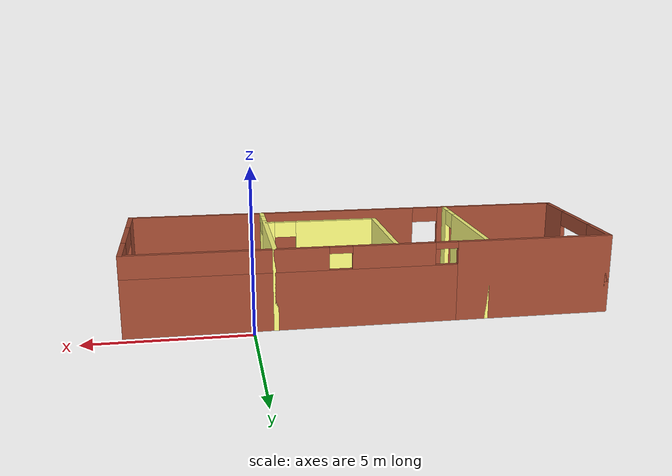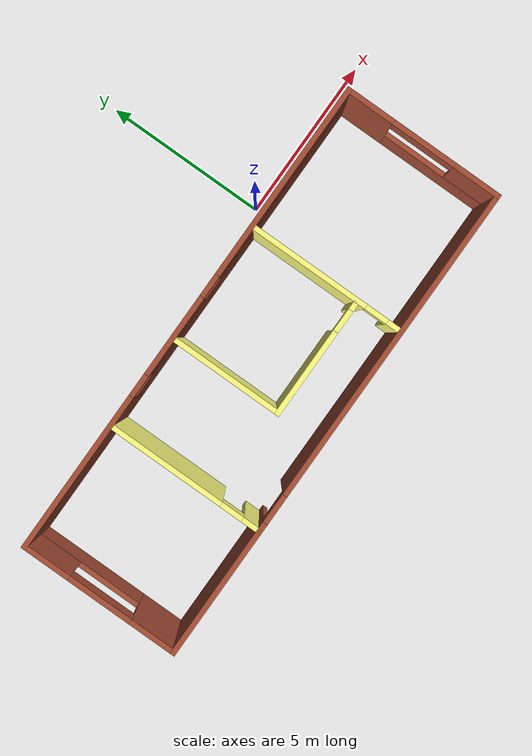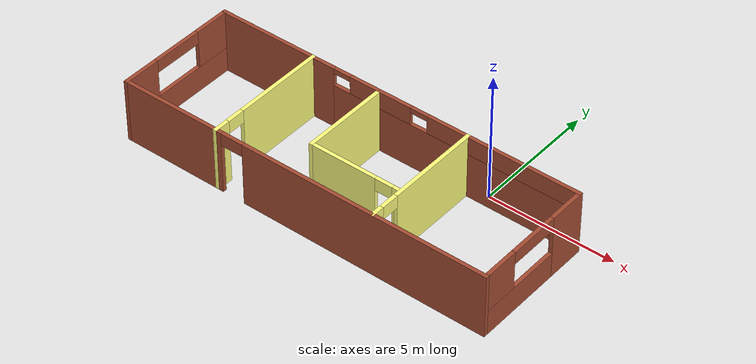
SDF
<?xml version='1.0'?>
<sdf version='1.6'>
  <model name='mybuilding'>
    <pose frame=''>-3.6755 -2.796 0 0 -0 0</pose>
    <link name='Wall_1'>
      <pose frame=''>0 2.425 0 0 -0 0</pose>
      <visual name='Wall_1_Visual_0'>
        <pose frame=''>-5.01931 0 1.25 0 -0 0</pose>
        <geometry>
          <box>
            <size>4.96139 0.15 2.5</size>
          </box>
        </geometry>
        <material>
          <script>
            <uri>file://media/materials/scripts/gazebo.material</uri>
            <name>Gazebo/Bricks</name>
          </script>
          <ambient>1 1 1 1</ambient>
        </material>
        <meta>
          <layer>0</layer>
        </meta>
      </visual>
      <collision name='Wall_1_Collision_0'>
        <geometry>
          <box>
            <size>4.96139 0.15 2.5</size>
          </box>
        </geometry>
        <pose frame=''>-5.01931 0 1.25 0 -0 0</pose>
      </collision>
      <visual name='Wall_1_Visual_1'>
        <pose frame=''>2.48069 0 0.9 0 -0 0</pose>
        <geometry>
          <box>
            <size>10.0386 0.15 1.8</size>
          </box>
        </geometry>
        <material>
          <script>
            <uri>file://media/materials/scripts/gazebo.material</uri>
            <name>Gazebo/Bricks</name>
          </script>
          <ambient>1 1 1 1</ambient>
        </material>
        <meta>
          <layer>0</layer>
        </meta>
      </visual>
      <collision name='Wall_1_Collision_1'>
        <geometry>
          <box>
            <size>10.0386 0.15 1.8</size>
          </box>
        </geometry>
        <pose frame=''>2.48069 0 0.9 0 -0 0</pose>
      </collision>
      <visual name='Wall_1_Visual_2'>
        <pose frame=''>-0.568551 0 2.15 0 -0 0</pose>
        <geometry>
          <box>
            <size>2.54013 0.15 0.7</size>
          </box>
        </geometry>
        <material>
          <script>
            <uri>file://media/materials/scripts/gazebo.material</uri>
            <name>Gazebo/Bricks</name>
          </script>
          <ambient>1 1 1 1</ambient>
        </material>
        <meta>
          <layer>0</layer>
        </meta>
      </visual>
      <collision name='Wall_1_Collision_2'>
        <geometry>
          <box>
            <size>2.54013 0.15 0.7</size>
          </box>
        </geometry>
        <pose frame=''>-0.568551 0 2.15 0 -0 0</pose>
      </collision>
      <visual name='Wall_1_Visual_3'>
        <pose frame=''>4.45076 0 2.15 0 -0 0</pose>
        <geometry>
          <box>
            <size>6.09849 0.15 0.7</size>
          </box>
        </geometry>
        <material>
          <script>
            <uri>file://media/materials/scripts/gazebo.material</uri>
            <name>Gazebo/Bricks</name>
          </script>
          <ambient>1 1 1 1</ambient>
        </material>
        <meta>
          <layer>0</layer>
        </meta>
      </visual>
      <collision name='Wall_1_Collision_3'>
        <geometry>
          <box>
            <size>6.09849 0.15 0.7</size>
          </box>
        </geometry>
        <pose frame=''>4.45076 0 2.15 0 -0 0</pose>
      </collision>
      <visual name='Wall_1_Visual_4'>
        <pose frame=''>-2.18861 0 2.4 0 -0 0</pose>
        <geometry>
          <box>
            <size>0.7 0.15 0.2</size>
          </box>
        </geometry>
        <material>
          <script>
            <uri>file://media/materials/scripts/gazebo.material</uri>
            <name>Gazebo/Bricks</name>
          </script>
          <ambient>1 1 1 1</ambient>
        </material>
        <meta>
          <layer>0</layer>
        </meta>
      </visual>
      <collision name='Wall_1_Collision_4'>
        <geometry>
          <box>
            <size>0.7 0.15 0.2</size>
          </box>
        </geometry>
        <pose frame=''>-2.18861 0 2.4 0 -0 0</pose>
      </collision>
      <visual name='Wall_1_Visual_5'>
        <pose frame=''>1.05151 0 2.4 0 -0 0</pose>
        <geometry>
          <box>
            <size>0.7 0.15 0.2</size>
          </box>
        </geometry>
        <material>
          <script>
            <uri>file://media/materials/scripts/gazebo.material</uri>
            <name>Gazebo/Bricks</name>
          </script>
          <ambient>1 1 1 1</ambient>
        </material>
        <meta>
          <layer>0</layer>
        </meta>
      </visual>
      <collision name='Wall_1_Collision_5'>
        <geometry>
          <box>
            <size>0.7 0.15 0.2</size>
          </box>
        </geometry>
        <pose frame=''>1.05151 0 2.4 0 -0 0</pose>
      </collision>
    </link>
    <link name='Wall_16'>
      <pose frame=''>1.15591 -1.00344 0 0 -0 3.14159</pose>
      <visual name='Wall_16_Visual_0'>
        <pose frame=''>-1.70833 0 1.25 0 -0 0</pose>
        <geometry>
          <box>
            <size>0.33335 0.15 2.5</size>
          </box>
        </geometry>
        <material>
          <script>
            <uri>file://media/materials/scripts/gazebo.material</uri>
            <name>Gazebo/Grey</name>
          </script>
          <ambient>1 1 0.498039 1</ambient>
        </material>
        <meta>
          <layer>0</layer>
        </meta>
      </visual>
      <collision name='Wall_16_Collision_0'>
        <geometry>
          <box>
            <size>0.33335 0.15 2.5</size>
          </box>
        </geometry>
        <pose frame=''>-1.70833 0 1.25 0 -0 0</pose>
      </collision>
      <visual name='Wall_16_Visual_1'>
        <pose frame=''>0.516675 0 1.25 0 -0 0</pose>
        <geometry>
          <box>
            <size>2.71665 0.15 2.5</size>
          </box>
        </geometry>
        <material>
          <script>
            <uri>file://media/materials/scripts/gazebo.material</uri>
            <name>Gazebo/Grey</name>
          </script>
          <ambient>1 1 0.498039 1</ambient>
        </material>
        <meta>
          <layer>0</layer>
        </meta>
      </visual>
      <collision name='Wall_16_Collision_1'>
        <geometry>
          <box>
            <size>2.71665 0.15 2.5</size>
          </box>
        </geometry>
        <pose frame=''>0.516675 0 1.25 0 -0 0</pose>
      </collision>
      <visual name='Wall_16_Visual_2'>
        <pose frame=''>-1.19165 0 2.25 0 -0 0</pose>
        <geometry>
          <box>
            <size>0.7 0.15 0.5</size>
          </box>
        </geometry>
        <material>
          <script>
            <uri>file://media/materials/scripts/gazebo.material</uri>
            <name>Gazebo/Grey</name>
          </script>
          <ambient>1 1 0.498039 1</ambient>
        </material>
        <meta>
          <layer>0</layer>
        </meta>
      </visual>
      <collision name='Wall_16_Collision_2'>
        <geometry>
          <box>
            <size>0.7 0.15 0.5</size>
          </box>
        </geometry>
        <pose frame=''>-1.19165 0 2.25 0 -0 0</pose>
      </collision>
    </link>
    <link name='Wall_2'>
      <pose frame=''>7.425 0 0 0 0 -1.5708</pose>
      <visual name='Wall_2_Visual_0'>
        <pose frame=''>-1.73467 0 1.25 0 -0 0</pose>
        <geometry>
          <box>
            <size>1.53065 0.15 2.5</size>
          </box>
        </geometry>
        <material>
          <script>
            <uri>file://media/materials/scripts/gazebo.material</uri>
            <name>Gazebo/Bricks</name>
          </script>
          <ambient>1 1 1 1</ambient>
        </material>
        <meta>
          <layer>0</layer>
        </meta>
      </visual>
      <collision name='Wall_2_Collision_0'>
        <geometry>
          <box>
            <size>1.53065 0.15 2.5</size>
          </box>
        </geometry>
        <pose frame=''>-1.73467 0 1.25 0 -0 0</pose>
      </collision>
      <visual name='Wall_2_Visual_1'>
        <pose frame=''>0.765326 0 0.5 0 -0 0</pose>
        <geometry>
          <box>
            <size>3.46935 0.15 1</size>
          </box>
        </geometry>
        <material>
          <script>
            <uri>file://media/materials/scripts/gazebo.material</uri>
            <name>Gazebo/Bricks</name>
          </script>
          <ambient>1 1 1 1</ambient>
        </material>
        <meta>
          <layer>0</layer>
        </meta>
      </visual>
      <collision name='Wall_2_Collision_1'>
        <geometry>
          <box>
            <size>3.46935 0.15 1</size>
          </box>
        </geometry>
        <pose frame=''>0.765326 0 0.5 0 -0 0</pose>
      </collision>
      <visual name='Wall_2_Visual_2'>
        <pose frame=''>1.76533 0 1.75 0 -0 0</pose>
        <geometry>
          <box>
            <size>1.46935 0.15 1.5</size>
          </box>
        </geometry>
        <material>
          <script>
            <uri>file://media/materials/scripts/gazebo.material</uri>
            <name>Gazebo/Bricks</name>
          </script>
          <ambient>1 1 1 1</ambient>
        </material>
        <meta>
          <layer>0</layer>
        </meta>
      </visual>
      <collision name='Wall_2_Collision_2'>
        <geometry>
          <box>
            <size>1.46935 0.15 1.5</size>
          </box>
        </geometry>
        <pose frame=''>1.76533 0 1.75 0 -0 0</pose>
      </collision>
      <visual name='Wall_2_Visual_3'>
        <pose frame=''>0.030652 0 2.25 0 -0 0</pose>
        <geometry>
          <box>
            <size>2 0.15 0.5</size>
          </box>
        </geometry>
        <material>
          <script>
            <uri>file://media/materials/scripts/gazebo.material</uri>
            <name>Gazebo/Bricks</name>
          </script>
          <ambient>1 1 1 1</ambient>
        </material>
        <meta>
          <layer>0</layer>
        </meta>
      </visual>
      <collision name='Wall_2_Collision_3'>
        <geometry>
          <box>
            <size>2 0.15 0.5</size>
          </box>
        </geometry>
        <pose frame=''>0.030652 0 2.25 0 -0 0</pose>
      </collision>
    </link>
    <link name='Wall_21'>
      <collision name='Wall_21_Collision'>
        <geometry>
          <box>
            <size>3.5 0.15 2.5</size>
          </box>
        </geometry>
        <pose frame=''>0 0 1.25 0 -0 0</pose>
      </collision>
      <visual name='Wall_21_Visual'>
        <pose frame=''>0 0 1.25 0 -0 0</pose>
        <geometry>
          <box>
            <size>3.5 0.15 2.5</size>
          </box>
        </geometry>
        <material>
          <script>
            <uri>file://media/materials/scripts/gazebo.material</uri>
            <name>Gazebo/Grey</name>
          </script>
          <ambient>1 1 0.498039 1</ambient>
        </material>
        <meta>
          <layer>0</layer>
        </meta>
      </visual>
      <pose frame=''>-0.644088 0.671555 0 0 -0 1.5708</pose>
    </link>
    <link name='Wall_3'>
      <pose frame=''>0 -2.425 0 0 -0 3.14159</pose>
      <visual name='Wall_3_Visual_0'>
        <pose frame=''>-2.58313 0 1.25 0 -0 0</pose>
        <geometry>
          <box>
            <size>9.83374 0.15 2.5</size>
          </box>
        </geometry>
        <material>
          <script>
            <uri>file://media/materials/scripts/gazebo.material</uri>
            <name>Gazebo/Bricks</name>
          </script>
          <ambient>1 1 1 1</ambient>
        </material>
        <meta>
          <layer>0</layer>
        </meta>
      </visual>
      <collision name='Wall_3_Collision_0'>
        <geometry>
          <box>
            <size>9.83374 0.15 2.5</size>
          </box>
        </geometry>
        <pose frame=''>-2.58313 0 1.25 0 -0 0</pose>
      </collision>
      <visual name='Wall_3_Visual_1'>
        <pose frame=''>5.36687 0 1.25 0 -0 0</pose>
        <geometry>
          <box>
            <size>4.26626 0.15 2.5</size>
          </box>
        </geometry>
        <material>
          <script>
            <uri>file://media/materials/scripts/gazebo.material</uri>
            <name>Gazebo/Bricks</name>
          </script>
          <ambient>1 1 1 1</ambient>
        </material>
        <meta>
          <layer>0</layer>
        </meta>
      </visual>
      <collision name='Wall_3_Collision_1'>
        <geometry>
          <box>
            <size>4.26626 0.15 2.5</size>
          </box>
        </geometry>
        <pose frame=''>5.36687 0 1.25 0 -0 0</pose>
      </collision>
      <visual name='Wall_3_Visual_2'>
        <pose frame=''>2.78374 0 2.25 0 -0 0</pose>
        <geometry>
          <box>
            <size>0.9 0.15 0.5</size>
          </box>
        </geometry>
        <material>
          <script>
            <uri>file://media/materials/scripts/gazebo.material</uri>
            <name>Gazebo/Bricks</name>
          </script>
          <ambient>1 1 1 1</ambient>
        </material>
        <meta>
          <layer>0</layer>
        </meta>
      </visual>
      <collision name='Wall_3_Collision_2'>
        <geometry>
          <box>
            <size>0.9 0.15 0.5</size>
          </box>
        </geometry>
        <pose frame=''>2.78374 0 2.25 0 -0 0</pose>
      </collision>
    </link>
    <link name='Wall_4'>
      <pose frame=''>-7.425 0 0 0 -0 1.5708</pose>
      <visual name='Wall_4_Visual_0'>
        <pose frame=''>-1.75772 0 1.25 0 -0 0</pose>
        <geometry>
          <box>
            <size>1.48456 0.15 2.5</size>
          </box>
        </geometry>
        <material>
          <script>
            <uri>file://media/materials/scripts/gazebo.material</uri>
            <name>Gazebo/Bricks</name>
          </script>
          <ambient>1 1 1 1</ambient>
        </material>
        <meta>
          <layer>0</layer>
        </meta>
      </visual>
      <collision name='Wall_4_Collision_0'>
        <geometry>
          <box>
            <size>1.48456 0.15 2.5</size>
          </box>
        </geometry>
        <pose frame=''>-1.75772 0 1.25 0 -0 0</pose>
      </collision>
      <visual name='Wall_4_Visual_1'>
        <pose frame=''>0.742279 0 0.5 0 -0 0</pose>
        <geometry>
          <box>
            <size>3.51544 0.15 1</size>
          </box>
        </geometry>
        <material>
          <script>
            <uri>file://media/materials/scripts/gazebo.material</uri>
            <name>Gazebo/Bricks</name>
          </script>
          <ambient>1 1 1 1</ambient>
        </material>
        <meta>
          <layer>0</layer>
        </meta>
      </visual>
      <collision name='Wall_4_Collision_1'>
        <geometry>
          <box>
            <size>3.51544 0.15 1</size>
          </box>
        </geometry>
        <pose frame=''>0.742279 0 0.5 0 -0 0</pose>
      </collision>
      <visual name='Wall_4_Visual_2'>
        <pose frame=''>1.74228 0 1.75 0 -0 0</pose>
        <geometry>
          <box>
            <size>1.51544 0.15 1.5</size>
          </box>
        </geometry>
        <material>
          <script>
            <uri>file://media/materials/scripts/gazebo.material</uri>
            <name>Gazebo/Bricks</name>
          </script>
          <ambient>1 1 1 1</ambient>
        </material>
        <meta>
          <layer>0</layer>
        </meta>
      </visual>
      <collision name='Wall_4_Collision_2'>
        <geometry>
          <box>
            <size>1.51544 0.15 1.5</size>
          </box>
        </geometry>
        <pose frame=''>1.74228 0 1.75 0 -0 0</pose>
      </collision>
      <visual name='Wall_4_Visual_3'>
        <pose frame=''>-0.015443 0 2.25 0 -0 0</pose>
        <geometry>
          <box>
            <size>2 0.15 0.5</size>
          </box>
        </geometry>
        <material>
          <script>
            <uri>file://media/materials/scripts/gazebo.material</uri>
            <name>Gazebo/Bricks</name>
          </script>
          <ambient>1 1 1 1</ambient>
        </material>
        <meta>
          <layer>0</layer>
        </meta>
      </visual>
      <collision name='Wall_4_Collision_3'>
        <geometry>
          <box>
            <size>2 0.15 0.5</size>
          </box>
        </geometry>
        <pose frame=''>-0.015443 0 2.25 0 -0 0</pose>
      </collision>
    </link>
    <link name='Wall_6'>
      <pose frame=''>-3.492 0 0 0 0 -1.5708</pose>
      <visual name='Wall_6_Visual_0'>
        <pose frame=''>-0.66539 0 1.25 0 -0 0</pose>
        <geometry>
          <box>
            <size>3.66922 0.15 2.5</size>
          </box>
        </geometry>
        <material>
          <script>
            <uri>file://media/materials/scripts/gazebo.material</uri>
            <name>Gazebo/Grey</name>
          </script>
          <ambient>1 1 0.498039 1</ambient>
        </material>
        <meta>
          <layer>0</layer>
        </meta>
      </visual>
      <collision name='Wall_6_Collision_0'>
        <geometry>
          <box>
            <size>3.66922 0.15 2.5</size>
          </box>
        </geometry>
        <pose frame=''>-0.66539 0 1.25 0 -0 0</pose>
      </collision>
      <visual name='Wall_6_Visual_1'>
        <pose frame=''>2.18461 0 1.25 0 -0 0</pose>
        <geometry>
          <box>
            <size>0.63078 0.15 2.5</size>
          </box>
        </geometry>
        <material>
          <script>
            <uri>file://media/materials/scripts/gazebo.material</uri>
            <name>Gazebo/Grey</name>
          </script>
          <ambient>1 1 0.498039 1</ambient>
        </material>
        <meta>
          <layer>0</layer>
        </meta>
      </visual>
      <collision name='Wall_6_Collision_1'>
        <geometry>
          <box>
            <size>0.63078 0.15 2.5</size>
          </box>
        </geometry>
        <pose frame=''>2.18461 0 1.25 0 -0 0</pose>
      </collision>
      <visual name='Wall_6_Visual_2'>
        <pose frame=''>1.51922 0 2.25 0 -0 0</pose>
        <geometry>
          <box>
            <size>0.7 0.15 0.5</size>
          </box>
        </geometry>
        <material>
          <script>
            <uri>file://media/materials/scripts/gazebo.material</uri>
            <name>Gazebo/Grey</name>
          </script>
          <ambient>1 1 0.498039 1</ambient>
        </material>
        <meta>
          <layer>0</layer>
        </meta>
      </visual>
      <collision name='Wall_6_Collision_2'>
        <geometry>
          <box>
            <size>0.7 0.15 0.5</size>
          </box>
        </geometry>
        <pose frame=''>1.51922 0 2.25 0 -0 0</pose>
      </collision>
    </link>
    <link name='Wall_8'>
      <pose frame=''>3.0055 0 0 0 0 -1.5708</pose>
      <visual name='Wall_8_Visual_0'>
        <pose frame=''>-0.61249 0 1.25 0 -0 0</pose>
        <geometry>
          <box>
            <size>3.77502 0.15 2.5</size>
          </box>
        </geometry>
        <material>
          <script>
            <uri>file://media/materials/scripts/gazebo.material</uri>
            <name>Gazebo/Grey</name>
          </script>
          <ambient>1 1 0.498039 1</ambient>
        </material>
        <meta>
          <layer>0</layer>
        </meta>
      </visual>
      <collision name='Wall_8_Collision_0'>
        <geometry>
          <box>
            <size>3.77502 0.15 2.5</size>
          </box>
        </geometry>
        <pose frame=''>-0.61249 0 1.25 0 -0 0</pose>
      </collision>
      <visual name='Wall_8_Visual_1'>
        <pose frame=''>2.23751 0 1.25 0 -0 0</pose>
        <geometry>
          <box>
            <size>0.52498 0.15 2.5</size>
          </box>
        </geometry>
        <material>
          <script>
            <uri>file://media/materials/scripts/gazebo.material</uri>
            <name>Gazebo/Grey</name>
          </script>
          <ambient>1 1 0.498039 1</ambient>
        </material>
        <meta>
          <layer>0</layer>
        </meta>
      </visual>
      <collision name='Wall_8_Collision_1'>
        <geometry>
          <box>
            <size>0.52498 0.15 2.5</size>
          </box>
        </geometry>
        <pose frame=''>2.23751 0 1.25 0 -0 0</pose>
      </collision>
      <visual name='Wall_8_Visual_2'>
        <pose frame=''>1.62502 0 2.25 0 -0 0</pose>
        <geometry>
          <box>
            <size>0.7 0.15 0.5</size>
          </box>
        </geometry>
        <material>
          <script>
            <uri>file://media/materials/scripts/gazebo.material</uri>
            <name>Gazebo/Grey</name>
          </script>
          <ambient>1 1 0.498039 1</ambient>
        </material>
        <meta>
          <layer>0</layer>
        </meta>
      </visual>
      <collision name='Wall_8_Collision_2'>
        <geometry>
          <box>
            <size>0.7 0.15 0.5</size>
          </box>
        </geometry>
        <pose frame=''>1.62502 0 2.25 0 -0 0</pose>
      </collision>
    </link>
    <static>1</static>
  </model>
</sdf>
